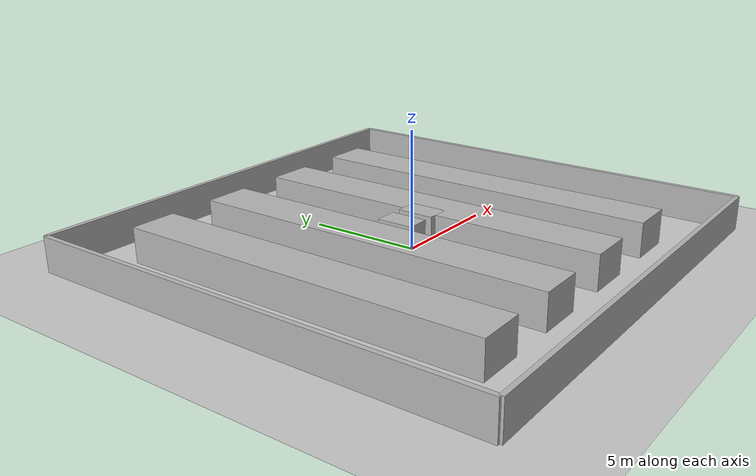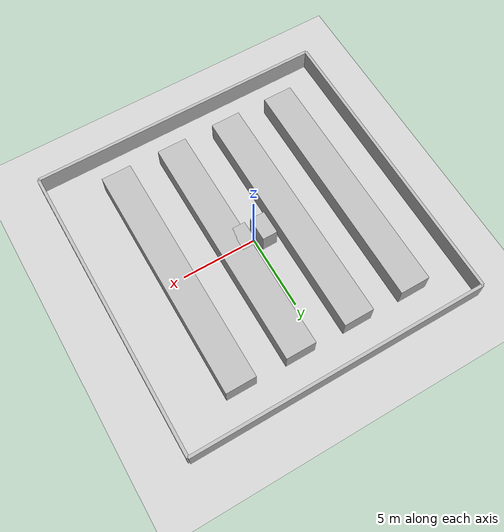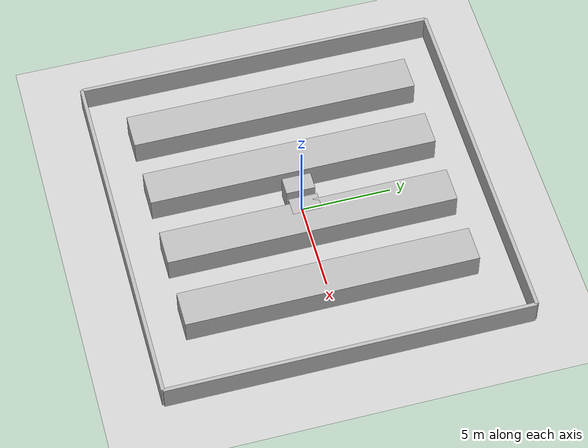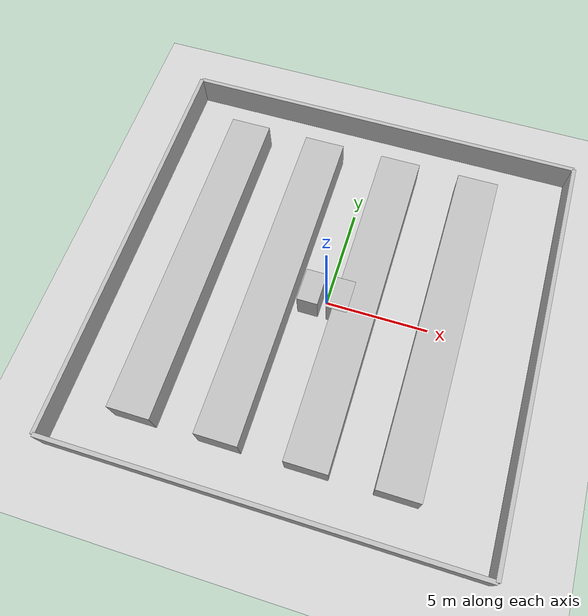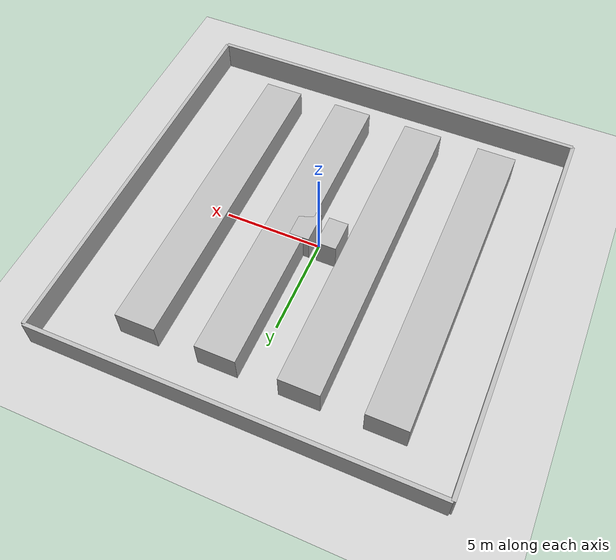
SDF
<?xml version="1.0" ?>
<sdf version="1.6">
<world name="warehouse_aisles">
  <!-- Gazebo ROS State Plugin - provides /set_entity_state service -->
  <plugin name='gazebo_ros_state' filename='libgazebo_ros_state.so'>
    <ros>
      <argument>model_states:=model_states_demo</argument>
    </ros>
    <update_rate>1.0</update_rate>
  </plugin>

  <include>
    <uri>model://sun</uri>
  </include>
  <include>
    <uri>model://ground_plane</uri>
  </include>

  <model name="b_north">
    <static>true</static>
    <pose>0 10.0 0.75 0 0 0</pose>
    <link name="link">
      <collision name="collision">
        <geometry>
          <box><size>20.0 0.2 1.5</size></box>
        </geometry>
      </collision>
      <visual name="visual">
        <geometry>
          <box><size>20.0 0.2 1.5</size></box>
        </geometry>
      </visual>
    </link>
  </model>

  <model name="b_south">
    <static>true</static>
    <pose>0 -10.0 0.75 0 0 0</pose>
    <link name="link">
      <collision name="collision">
        <geometry>
          <box><size>20.0 0.2 1.5</size></box>
        </geometry>
      </collision>
      <visual name="visual">
        <geometry>
          <box><size>20.0 0.2 1.5</size></box>
        </geometry>
      </visual>
    </link>
  </model>

  <model name="b_east">
    <static>true</static>
    <pose>10.0 0 0.75 0 0 0</pose>
    <link name="link">
      <collision name="collision">
        <geometry>
          <box><size>0.2 20.0 1.5</size></box>
        </geometry>
      </collision>
      <visual name="visual">
        <geometry>
          <box><size>0.2 20.0 1.5</size></box>
        </geometry>
      </visual>
    </link>
  </model>

  <model name="b_west">
    <static>true</static>
    <pose>-10.0 0 0.75 0 0 0</pose>
    <link name="link">
      <collision name="collision">
        <geometry>
          <box><size>0.2 20.0 1.5</size></box>
        </geometry>
      </collision>
      <visual name="visual">
        <geometry>
          <box><size>0.2 20.0 1.5</size></box>
        </geometry>
      </visual>
    </link>
  </model>

  <model name="shelf_0">
    <static>true</static>
    <pose>-6.5 0.0 0.75 0 0 0</pose>
    <link name="link">
      <collision name="collision">
        <geometry>
          <box><size>2.0 16.0 1.5</size></box>
        </geometry>
      </collision>
      <visual name="visual">
        <geometry>
          <box><size>2.0 16.0 1.5</size></box>
        </geometry>
      </visual>
    </link>
  </model>

  <model name="shelf_1">
    <static>true</static>
    <pose>-2.5 0.0 0.75 0 0 0</pose>
    <link name="link">
      <collision name="collision">
        <geometry>
          <box><size>2.0 16.0 1.5</size></box>
        </geometry>
      </collision>
      <visual name="visual">
        <geometry>
          <box><size>2.0 16.0 1.5</size></box>
        </geometry>
      </visual>
    </link>
  </model>

  <model name="shelf_2">
    <static>true</static>
    <pose>1.5 0.0 0.75 0 0 0</pose>
    <link name="link">
      <collision name="collision">
        <geometry>
          <box><size>2.0 16.0 1.5</size></box>
        </geometry>
      </collision>
      <visual name="visual">
        <geometry>
          <box><size>2.0 16.0 1.5</size></box>
        </geometry>
      </visual>
    </link>
  </model>

  <model name="shelf_3">
    <static>true</static>
    <pose>5.5 0.0 0.75 0 0 0</pose>
    <link name="link">
      <collision name="collision">
        <geometry>
          <box><size>2.0 16.0 1.5</size></box>
        </geometry>
      </collision>
      <visual name="visual">
        <geometry>
          <box><size>2.0 16.0 1.5</size></box>
        </geometry>
      </visual>
    </link>
  </model>

  <model name="choke_left">
    <static>true</static>
    <pose>-0.7 0.0 0.75 0 0 0</pose>
    <link name="link">
      <collision name="collision">
        <geometry>
          <box><size>1.0 1.6 1.5</size></box>
        </geometry>
      </collision>
      <visual name="visual">
        <geometry>
          <box><size>1.0 1.6 1.5</size></box>
        </geometry>
      </visual>
    </link>
  </model>

  <model name="choke_right">
    <static>true</static>
    <pose>0.7 0.0 0.75 0 0 0</pose>
    <link name="link">
      <collision name="collision">
        <geometry>
          <box><size>1.0 1.6 1.5</size></box>
        </geometry>
      </collision>
      <visual name="visual">
        <geometry>
          <box><size>1.0 1.6 1.5</size></box>
        </geometry>
      </visual>
    </link>
  </model>

</world>
</sdf>
